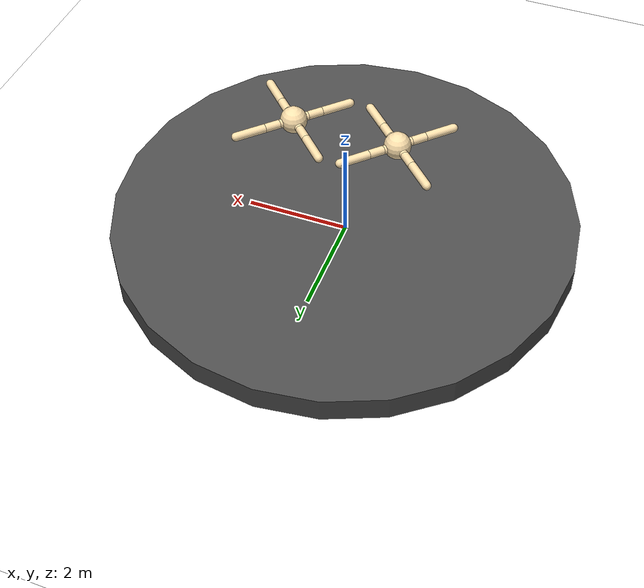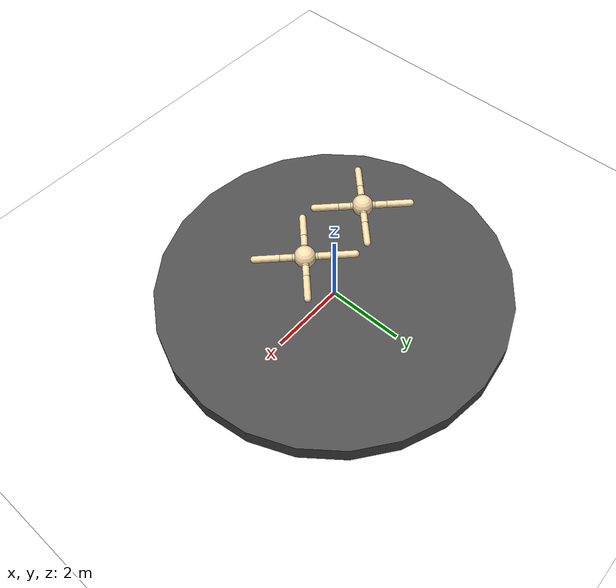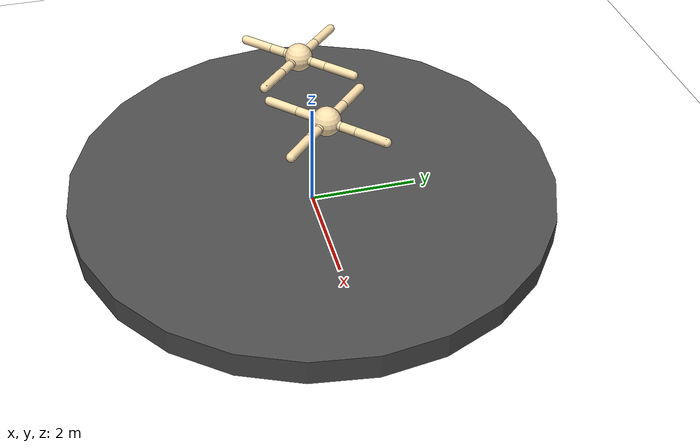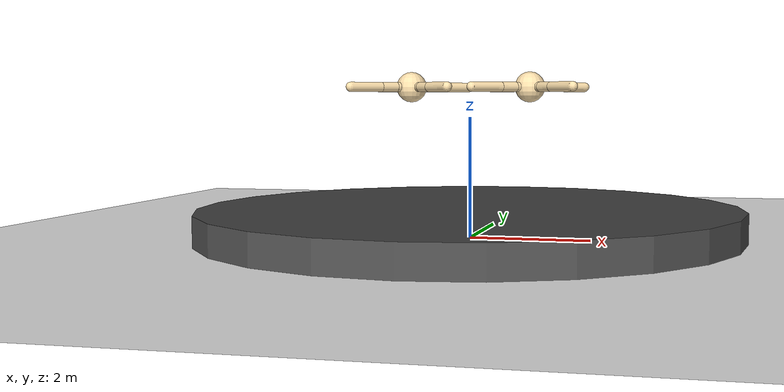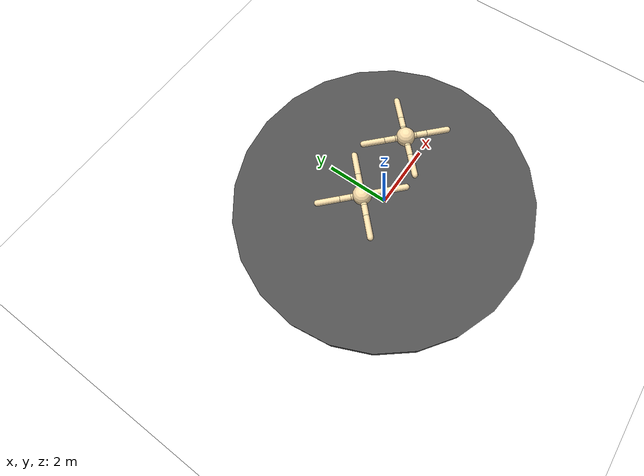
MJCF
<mujoco model="mutiagent_world">
  <compiler angle="degree" coordinate="local" inertiafromgeom="true" />
  <option integrator="RK4" timestep="0.003" solver="PGS" iterations="1000" />
  <default>
    <joint armature="1" damping="1" limited="true" />
  <default class="agent0"><joint armature="1" damping="1" limited="true" />
    <geom conaffinity="1" condim="3" density="5.0" friction="1 0.5 0.5" margin="0.01" rgba="0.98 0.87 0.67 1" material="geom" />
    <motor ctrllimited="true" ctrlrange="-.4 .4" />
</default><default class="agent1"><joint armature="1" damping="1" limited="true" />
    <geom conaffinity="1" condim="3" density="5.0" friction="1 0.5 0.5" margin="0.01" rgba="0.98 0.87 0.67 1" material="geom" />
    <motor ctrllimited="true" ctrlrange="-.4 .4" />
</default></default>
  <visual>
    <headlight ambient=".1 .1 .1" diffuse=".6 .6 .6" specular="0.3 0.3 0.3" />
    <map znear=".01" />
    <quality shadowsize="16384" />
  </visual>
  <asset>
    <texture builtin="gradient" height="100" rgb1="1 1 1" rgb2="0 0 0" type="skybox" width="100" />
    <texture builtin="flat" height="1278" mark="cross" markrgb="0 0 0" name="texgeom" random="0.01" rgb1="0.8 0.6 0.4" rgb2="0.8 0.6 0.4" type="cube" width="127" />
    <texture builtin="checker" height="100" name="texplane" rgb1="0.5 0.5 0.5" rgb2="0.5 0.5 0.5" type="2d" width="100" markrgb="0.2 0.2 0.2" mark="edge" />
    <texture name="MatPlane" type="2d" builtin="checker" rgb1=".5 .5 .5" rgb2=".5 .5 .5" width="300" height="300" mark="edge" markrgb="0.1 0.1 0.1" />
    <material name="MatPlane" texture="MatPlane" texrepeat="2 2" texuniform="true" reflectance=".2" />
    <material name="geom" texture="texgeom" texuniform="true" />
  </asset>
  <worldbody>
    <light cutoff="100" diffuse="1 1 1" dir="-0 0 -1.3" directional="true" exponent="1" pos="0 0 1.3" specular=".1 .1 .1" />
    <geom contype="1" conaffinity="1" friction="1 .1 .1" condim="3" material="MatPlane" name="floor" pos="0 0 0" rgba="1 1 1 1" size="20 20 0.125" type="plane" />
    <geom fromto="4 -5 0  4 +5 0" name="rightgoal" rgba="0.6 0.0 0.0 0" size=".03" type="cylinder" />
    <geom fromto="-4 -5 0  -4 +5 0" name="leftgoal" rgba="0.6 0.0 0.0 0" size=".03" type="cylinder" />
    <geom conaffinity="1" condim="3" contype="1" friction="1 .1 .1" name="arena" size="4.5 .25" type="cylinder" pos="0 0 0.25" rgba="0.3 0.3 0.3 1" />
  <body name="agent0/torso" pos="-1 0 2.5" euler="0 0 0">
  <geom name="agent0/torso_geom" pos="0 0 0" size="0.25" type="sphere" class="agent0" />
  <joint armature="0" damping="0" limited="false" margin="0.01" name="agent0/root" pos="0 0 0" range="-30 30" type="free" />
  <body name="agent0/front_left_leg" pos="0 0 0">
    <geom fromto="0.0 0.0 0.0 0.2 0.2 0.0" name="agent0/aux_1_geom" size="0.08" type="capsule" class="agent0" />
    <body name="agent0/aux_1" pos="0.2 0.2 0">
      <joint axis="0 0 1" name="agent0/hip_1" pos="0.0 0.0 0.0" range="-30 30" type="hinge" />
      <geom fromto="0.0 0.0 0.0 0.2 0.2 0.0" name="agent0/left_leg_geom" size="0.08" type="capsule" class="agent0" />
      <body pos="0.2 0.2 0" name="agent0/anon1763856721">
        <joint axis="-1 1 0" name="agent0/ankle_1" pos="0.0 0.0 0.0" range="30 70" type="hinge" />
        <geom fromto="0.0 0.0 0.0 0.4 0.4 0.0" name="agent0/left_ankle_geom" size="0.08" type="capsule" class="agent0" />
      </body>
    </body>
  </body>
  <body name="agent0/front_right_leg" pos="0 0 0">
    <geom fromto="0.0 0.0 0.0 -0.2 0.2 0.0" name="agent0/aux_2_geom" size="0.08" type="capsule" class="agent0" />
    <body name="agent0/aux_2" pos="-0.2 0.2 0">
      <joint axis="0 0 1" name="agent0/hip_2" pos="0.0 0.0 0.0" range="-30 30" type="hinge" />
      <geom fromto="0.0 0.0 0.0 -0.2 0.2 0.0" name="agent0/right_leg_geom" size="0.08" type="capsule" class="agent0" />
      <body pos="-0.2 0.2 0" name="agent0/anon1517716720">
        <joint axis="1 1 0" name="agent0/ankle_2" pos="0.0 0.0 0.0" range="-70 -30" type="hinge" />
        <geom fromto="0.0 0.0 0.0 -0.4 0.4 0.0" name="agent0/right_ankle_geom" size="0.08" type="capsule" class="agent0" />
      </body>
    </body>
  </body>
  <body name="agent0/back_leg" pos="0 0 0">
    <geom fromto="0.0 0.0 0.0 -0.2 -0.2 0.0" name="agent0/aux_3_geom" size="0.08" type="capsule" class="agent0" />
    <body name="agent0/aux_3" pos="-0.2 -0.2 0">
      <joint axis="0 0 1" name="agent0/hip_3" pos="0.0 0.0 0.0" range="-30 30" type="hinge" />
      <geom fromto="0.0 0.0 0.0 -0.2 -0.2 0.0" name="agent0/back_leg_geom" size="0.08" type="capsule" class="agent0" />
      <body pos="-0.2 -0.2 0" name="agent0/anon2353311807">
        <joint axis="-1 1 0" name="agent0/ankle_3" pos="0.0 0.0 0.0" range="-70 -30" type="hinge" />
        <geom fromto="0.0 0.0 0.0 -0.4 -0.4 0.0" name="agent0/third_ankle_geom" size="0.08" type="capsule" class="agent0" />
      </body>
    </body>
  </body>
  <body name="agent0/right_back_leg" pos="0 0 0">
    <geom fromto="0.0 0.0 0.0 0.2 -0.2 0.0" name="agent0/aux_4_geom" size="0.08" type="capsule" class="agent0" />
    <body name="agent0/aux_4" pos="0.2 -0.2 0">
      <joint axis="0 0 1" name="agent0/hip_4" pos="0.0 0.0 0.0" range="-30 30" type="hinge" />
      <geom fromto="0.0 0.0 0.0 0.2 -0.2 0.0" name="agent0/rightback_leg_geom" size="0.08" type="capsule" class="agent0" />
      <body pos="0.2 -0.2 0" name="agent0/anon2717355108">
        <joint axis="1 1 0" name="agent0/ankle_4" pos="0.0 0.0 0.0" range="30 70" type="hinge" />
        <geom fromto="0.0 0.0 0.0 0.4 -0.4 0.0" name="agent0/fourth_ankle_geom" size="0.08" type="capsule" class="agent0" />
      </body>
    </body>
  </body>
</body>

<body name="agent1/torso" pos="1 0 2.5" euler="0 0 180">
  <geom name="agent1/torso_geom" pos="0 0 0" size="0.25" type="sphere" class="agent1" />
  <joint armature="0" damping="0" limited="false" margin="0.01" name="agent1/root" pos="0 0 0" range="-30 30" type="free" />
  <body name="agent1/front_left_leg" pos="0 0 0">
    <geom fromto="0.0 0.0 0.0 0.2 0.2 0.0" name="agent1/aux_1_geom" size="0.08" type="capsule" class="agent1" />
    <body name="agent1/aux_1" pos="0.2 0.2 0">
      <joint axis="0 0 1" name="agent1/hip_1" pos="0.0 0.0 0.0" range="-30 30" type="hinge" />
      <geom fromto="0.0 0.0 0.0 0.2 0.2 0.0" name="agent1/left_leg_geom" size="0.08" type="capsule" class="agent1" />
      <body pos="0.2 0.2 0" name="agent1/anon1987182400">
        <joint axis="-1 1 0" name="agent1/ankle_1" pos="0.0 0.0 0.0" range="30 70" type="hinge" />
        <geom fromto="0.0 0.0 0.0 0.4 0.4 0.0" name="agent1/left_ankle_geom" size="0.08" type="capsule" class="agent1" />
      </body>
    </body>
  </body>
  <body name="agent1/front_right_leg" pos="0 0 0">
    <geom fromto="0.0 0.0 0.0 -0.2 0.2 0.0" name="agent1/aux_2_geom" size="0.08" type="capsule" class="agent1" />
    <body name="agent1/aux_2" pos="-0.2 0.2 0">
      <joint axis="0 0 1" name="agent1/hip_2" pos="0.0 0.0 0.0" range="-30 30" type="hinge" />
      <geom fromto="0.0 0.0 0.0 -0.2 0.2 0.0" name="agent1/right_leg_geom" size="0.08" type="capsule" class="agent1" />
      <body pos="-0.2 0.2 0" name="agent1/anon3086797522">
        <joint axis="1 1 0" name="agent1/ankle_2" pos="0.0 0.0 0.0" range="-70 -30" type="hinge" />
        <geom fromto="0.0 0.0 0.0 -0.4 0.4 0.0" name="agent1/right_ankle_geom" size="0.08" type="capsule" class="agent1" />
      </body>
    </body>
  </body>
  <body name="agent1/back_leg" pos="0 0 0">
    <geom fromto="0.0 0.0 0.0 -0.2 -0.2 0.0" name="agent1/aux_3_geom" size="0.08" type="capsule" class="agent1" />
    <body name="agent1/aux_3" pos="-0.2 -0.2 0">
      <joint axis="0 0 1" name="agent1/hip_3" pos="0.0 0.0 0.0" range="-30 30" type="hinge" />
      <geom fromto="0.0 0.0 0.0 -0.2 -0.2 0.0" name="agent1/back_leg_geom" size="0.08" type="capsule" class="agent1" />
      <body pos="-0.2 -0.2 0" name="agent1/anon7153303077">
        <joint axis="-1 1 0" name="agent1/ankle_3" pos="0.0 0.0 0.0" range="-70 -30" type="hinge" />
        <geom fromto="0.0 0.0 0.0 -0.4 -0.4 0.0" name="agent1/third_ankle_geom" size="0.08" type="capsule" class="agent1" />
      </body>
    </body>
  </body>
  <body name="agent1/right_back_leg" pos="0 0 0">
    <geom fromto="0.0 0.0 0.0 0.2 -0.2 0.0" name="agent1/aux_4_geom" size="0.08" type="capsule" class="agent1" />
    <body name="agent1/aux_4" pos="0.2 -0.2 0">
      <joint axis="0 0 1" name="agent1/hip_4" pos="0.0 0.0 0.0" range="-30 30" type="hinge" />
      <geom fromto="0.0 0.0 0.0 0.2 -0.2 0.0" name="agent1/rightback_leg_geom" size="0.08" type="capsule" class="agent1" />
      <body pos="0.2 -0.2 0" name="agent1/anon7993379286">
        <joint axis="1 1 0" name="agent1/ankle_4" pos="0.0 0.0 0.0" range="30 70" type="hinge" />
        <geom fromto="0.0 0.0 0.0 0.4 -0.4 0.0" name="agent1/fourth_ankle_geom" size="0.08" type="capsule" class="agent1" />
      </body>
    </body>
  </body>
</body>

</worldbody>
<actuator>
  <motor ctrllimited="true" ctrlrange="-1.0 1.0" joint="agent0/hip_4" gear="150" class="agent0" />
  <motor ctrllimited="true" ctrlrange="-1.0 1.0" joint="agent0/ankle_4" gear="150" class="agent0" />
  <motor ctrllimited="true" ctrlrange="-1.0 1.0" joint="agent0/hip_1" gear="150" class="agent0" />
  <motor ctrllimited="true" ctrlrange="-1.0 1.0" joint="agent0/ankle_1" gear="150" class="agent0" />
  <motor ctrllimited="true" ctrlrange="-1.0 1.0" joint="agent0/hip_2" gear="150" class="agent0" />
  <motor ctrllimited="true" ctrlrange="-1.0 1.0" joint="agent0/ankle_2" gear="150" class="agent0" />
  <motor ctrllimited="true" ctrlrange="-1.0 1.0" joint="agent0/hip_3" gear="150" class="agent0" />
  <motor ctrllimited="true" ctrlrange="-1.0 1.0" joint="agent0/ankle_3" gear="150" class="agent0" />
<motor ctrllimited="true" ctrlrange="-1.0 1.0" joint="agent1/hip_4" gear="150" class="agent1" />
  <motor ctrllimited="true" ctrlrange="-1.0 1.0" joint="agent1/ankle_4" gear="150" class="agent1" />
  <motor ctrllimited="true" ctrlrange="-1.0 1.0" joint="agent1/hip_1" gear="150" class="agent1" />
  <motor ctrllimited="true" ctrlrange="-1.0 1.0" joint="agent1/ankle_1" gear="150" class="agent1" />
  <motor ctrllimited="true" ctrlrange="-1.0 1.0" joint="agent1/hip_2" gear="150" class="agent1" />
  <motor ctrllimited="true" ctrlrange="-1.0 1.0" joint="agent1/ankle_2" gear="150" class="agent1" />
  <motor ctrllimited="true" ctrlrange="-1.0 1.0" joint="agent1/hip_3" gear="150" class="agent1" />
  <motor ctrllimited="true" ctrlrange="-1.0 1.0" joint="agent1/ankle_3" gear="150" class="agent1" />
</actuator>

</mujoco>
